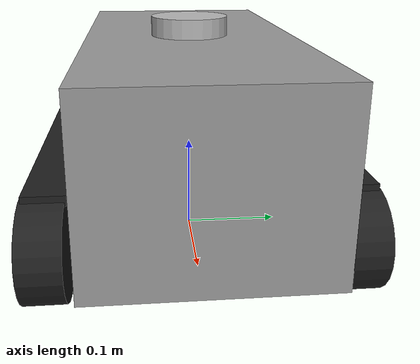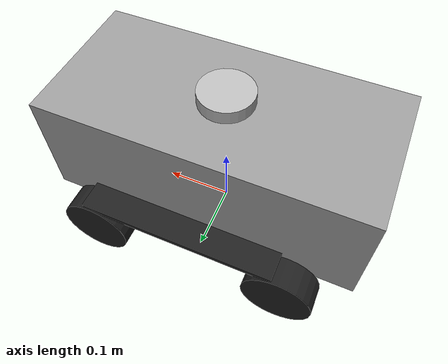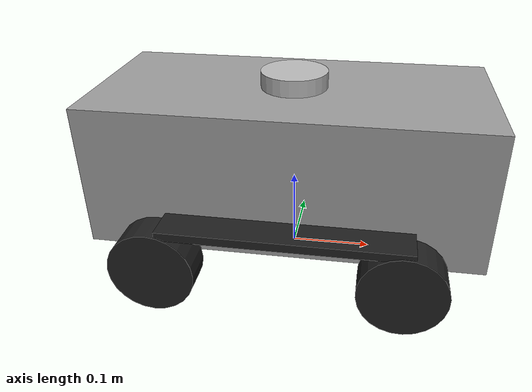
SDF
<?xml version="1.0" ?>

<sdf version="1.5">
  <!-- http://sdformat.org/spec?elem=sensor&ver=1.5 -->
  <model name="tankbot">
    <link name="chassis">
      <pose>0 0 0.135  0 0 0</pose>
      <inertial>
        <pose>0.04650000000000001 0 0  0 0 0</pose>
        <mass>2.0</mass>
        <inertia>
          <ixx>0.012592666666666665</ixx>
          <iyy>0.04085416666666667</iyy>
          <izz>0.043813500000000005</izz>
          <ixy>0</ixy>
          <ixz>0</ixz>
          <iyz>0</iyz>
        </inertia>
      </inertial>
      <collision name="collision">
        <geometry>
          <box>
            <size>0.465 0.216 0.17</size>
          </box>
        </geometry>
      </collision>
      <visual name="visual">
        <geometry>
          <box>
            <size>0.465 0.216 0.17</size>
          </box>
        </geometry>
        <material>
          <script>
            <uri>file://media/materials/scripts/gazebo.material</uri>
            <name>Gazebo/Grey</name>
          </script>
        </material>
      </visual>
    </link>

    <link name="wheel_fl">
      <pose>
        0.1395 0.14200000000000002 0.05
        -1.5707963267948966 -0.08726646259971647 0
      </pose>
      <inertial>
        <mass>0.25</mass>
        <inertia>
          <ixx>0.00018958333333333338</ixx>
          <iyy>0.00018958333333333338</iyy>
          <izz>0.00031250000000000006</izz>
          <ixy>0</ixy>
          <ixz>0</ixz>
          <iyz>0</iyz>
        </inertia>
      </inertial>
      <collision name="collision">
        <geometry>
          <cylinder>
            <radius>0.05</radius>
            <length>0.04</length>
          </cylinder>
        </geometry>
      </collision>
      <visual name="wheel_fl">
        <geometry>
          <cylinder>
            <radius>0.05</radius>
            <length>0.04</length>
          </cylinder>
        </geometry>
        <material>
          <script>
            <uri>file://media/materials/scripts/gazebo.material</uri>
            <name>Gazebo/Black</name>
          </script>
        </material>
      </visual>
    </link>

    <joint name="wheel_fl_drive" type="revolute">
      <parent>chassis</parent>
      <child>wheel_fl</child>
      <axis>
        <xyz>0 0 1</xyz>
      </axis>
    </joint>

    <link name="chain_l_up">
      <pose>
        0.0098 0.14 0.1
        0.0 0.0 0.0
      </pose>
      <gravity>0</gravity>
      <collision name="collision">
        <geometry>
          <box>
            <size>0.28 0.04 0.01</size>
          </box>
        </geometry>
      </collision>
      <visual name="visual">
        <geometry>
          <box>
            <size>0.28 0.04 0.01</size>
          </box>
        </geometry>
        <material>
          <script>
            <uri>file://media/materials/scripts/gazebo.material</uri>
            <name>Gazebo/Black</name>
          </script>
        </material>
      </visual>
    </link>

    <link name="chain_r_up">
      <pose>
        0.0098 -0.14 0.1
        0.0 0.0 0.0
      </pose>
      <gravity>0</gravity>
      <collision name="collision">
        <geometry>
          <box>
            <size>0.28 0.04 0.01</size>
          </box>
        </geometry>
      </collision>
      <visual name="visual">
        <geometry>
          <box>
            <size>0.28 0.04 0.01</size>
          </box>
        </geometry>
        <material>
          <script>
            <uri>file://media/materials/scripts/gazebo.material</uri>
            <name>Gazebo/Black</name>
          </script>
        </material>
      </visual>
    </link>

    <joint name="chain_up_joint" type="fixed">
      <parent>chain_l_up</parent>
      <child>chain_r_up</child>
    </joint>

    <joint name="chain_up_2_joint" type="fixed">
      <parent>chassis</parent>
      <child>chain_l_up</child>
    </joint>

    <link name="wheel_fr">
      <pose>
        0.1395 -0.14200000000000002 0.05
        -1.5707963267948966 -0.08726646259971647 0
      </pose>
      <inertial>
        <mass>0.25</mass>
        <inertia>
          <ixx>0.00018958333333333338</ixx>
          <iyy>0.00018958333333333338</iyy>
          <izz>0.00031250000000000006</izz>
          <ixy>0</ixy>
          <ixz>0</ixz>
          <iyz>0</iyz>
        </inertia>
      </inertial>
      <collision name="collision">
        <geometry>
          <cylinder>
            <radius>0.05</radius>
            <length>0.04</length>
          </cylinder>
        </geometry>
      </collision>
      <visual name="visual">
        <geometry>
          <cylinder>
            <radius>0.05</radius>
            <length>0.04</length>
          </cylinder>
        </geometry>
        <material>
          <script>
            <uri>file://media/materials/scripts/gazebo.material</uri>
            <name>Gazebo/Black</name>
          </script>
        </material>
      </visual>
    </link>

    <joint name="wheel_fr_drive" type="revolute">
      <parent>chassis</parent>
      <child>wheel_fr</child>
      <axis>
        <xyz>0 0 1</xyz>
      </axis>
    </joint>

    <link name="wheel_rl">
      <pose>
       -0.1395 0.14200000000000002 0.05
       -1.5707963267948966 0 0
      </pose>
      <inertial>
        <mass>0.25</mass>
        <inertia>
          <ixx>0.00018958333333333338</ixx>
          <iyy>0.00018958333333333338</iyy>
          <izz>0.00031250000000000006</izz>
          <ixy>0</ixy>
          <ixz>0</ixz>
          <iyz>0</iyz>
        </inertia>
      </inertial>
      <collision name="collision">
        <geometry>
          <cylinder>
            <radius>0.05</radius>
            <length>0.04</length>
          </cylinder>
        </geometry>
      </collision>
      <visual name="visual">
        <geometry>
          <cylinder>
            <radius>0.05</radius>
            <length>0.04</length>
          </cylinder>
        </geometry>
        <material>
          <script>
            <uri>file://media/materials/scripts/gazebo.material</uri>
            <name>Gazebo/Black</name>
          </script>
        </material>
      </visual>
    </link>
    <joint name="wheel_rl_drive" type="revolute">
      <parent>chassis</parent>
      <child>wheel_rl</child>
      <axis>
        <xyz>0 0 1</xyz>
      </axis>
    </joint>

    <link name="wheel_rr">
      <pose>
       -0.1395 -0.14200000000000002 0.05
       -1.5707963267948966 0 0
      </pose>
      <inertial>
        <mass>0.25</mass>
        <inertia>
          <ixx>0.00018958333333333338</ixx>
          <iyy>0.00018958333333333338</iyy>
          <izz>0.00031250000000000006</izz>
          <ixy>0</ixy>
          <ixz>0</ixz>
          <iyz>0</iyz>
        </inertia>
      </inertial>
      <collision name="collision">
        <geometry>
          <cylinder>
            <radius>0.05</radius>
            <length>0.04</length>
          </cylinder>
        </geometry>
      </collision>
      <visual name="visual">
        <geometry>
          <cylinder>
            <radius>0.05</radius>
            <length>0.04</length>
          </cylinder>
        </geometry>
        <material>
          <script>
            <uri>file://media/materials/scripts/gazebo.material</uri>
            <name>Gazebo/Black</name>
          </script>
        </material>
      </visual>
    </link>
    <joint name="wheel_rr_drive" type="revolute">
      <parent>chassis</parent>
      <child>wheel_rr</child>
      <axis>
        <xyz>0 0 1</xyz>
      </axis>
    </joint>

    <include>
      <uri>model://lazstar</uri>
      <pose>
        0.0 0.0 0.22000000000000003
        0.0 0.0 0.0
      </pose>
    </include>
    <joint name="lidar_joint" type="fixed">
      <child>lazstar::link</child>
      <parent>chassis</parent>
    </joint>
  </model>
</sdf>

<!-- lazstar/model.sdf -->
<sdf version="1.7">
  <model name="lazstar">
    <pose>0 0 0.02 0 0 0</pose>
    <link name="link">
      <inertial>
        <mass>0.1</mass>
      </inertial>
      <visual name="visual">
        <geometry>
          <cylinder>
            <radius>0.04</radius>
            <length>0.04</length>
          </cylinder>
        </geometry>
      </visual>
      <collision name="collision-base">
        <pose>0 0 -0.0145 0 0 0</pose>
        <geometry>
          <box>
            <size>0.05 0.05 0.041</size>
          </box>
        </geometry>
      </collision>
      <collision name="collision-top">
        <pose>0 0 0.0205 0 0 0</pose>
        <geometry>
          <cylinder>
            <radius>0.021</radius>
            <length>0.029</length>
          </cylinder>
        </geometry>
      </collision>
      <sensor name="laser" type="ray">
        <pose>
          0.01 0.0 0.0175
          0.0 -0.0 0.0
        </pose>
        <ray>
          <scan>
            <horizontal>
              <samples>7</samples>
              <resolution>1</resolution>
              <min_angle>-2.35619</min_angle>
              <max_angle>2.35619</max_angle>
            </horizontal>
          </scan>
          <range>
            <min>0.2</min>
            <max>2.0</max>
            <resolution>0.2</resolution>
          </range>
        </ray>
        <plugin name="laser" filename="libRayPlugin.so" />
        <always_on>1</always_on>
        <update_rate>5</update_rate>
        <visualize>true</visualize>
      </sensor>
    </link>
  </model>
</sdf>
